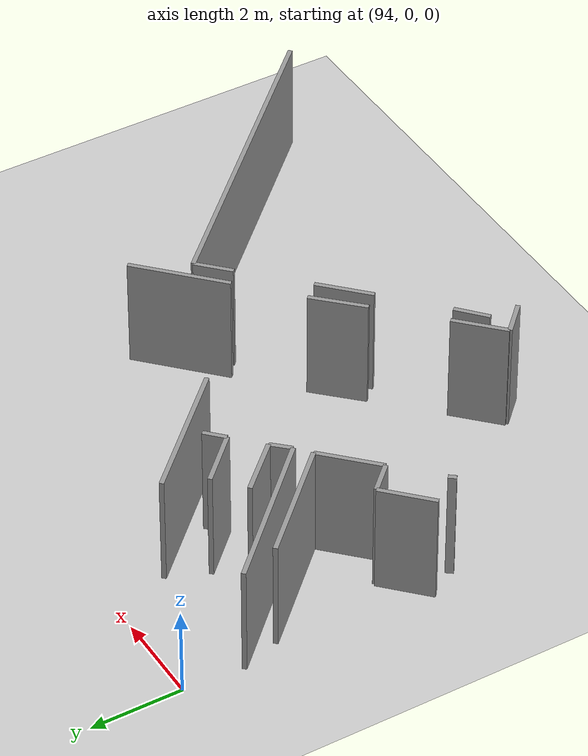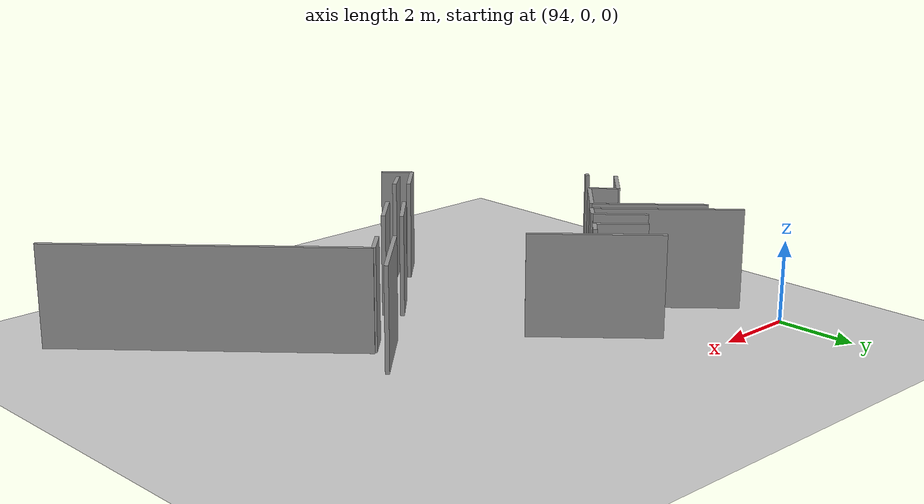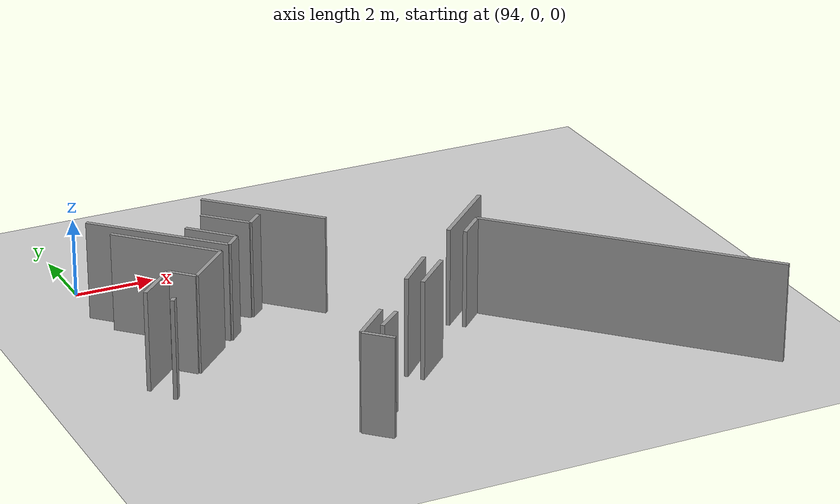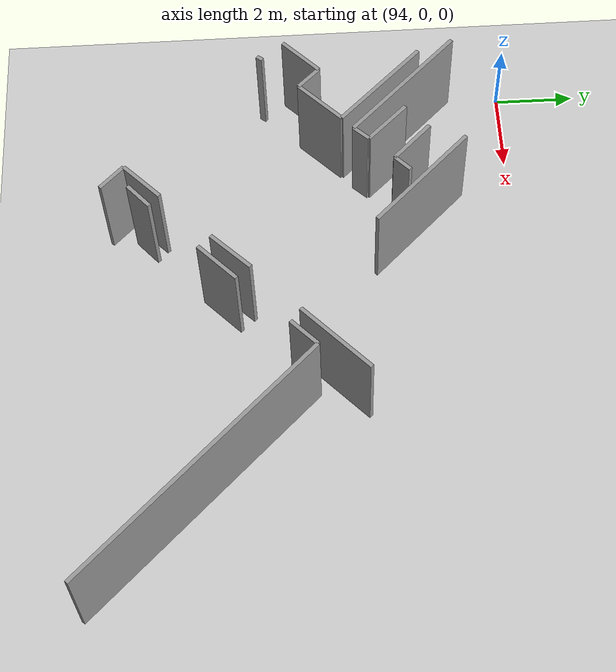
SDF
<sdf version="1.6">
 <world name="default">
  <model name="ground_plane">
   <static>1</static>
   <link name="link">
    <collision name="collision">
     <geometry><plane><normal>0 0 1</normal><size>100 100</size></plane></geometry>
     <surface><friction><ode><mu>100</mu><mu2>50</mu2></ode></friction></surface>
    </collision>
    <visual name="visual">
     <cast_shadows>0</cast_shadows>
     <geometry><plane><normal>0 0 1</normal><size>100 100</size></plane></geometry>
     <material>
      <script><uri>file://media/materials/scripts/gazebo.material</uri><name>Gazebo/Grey</name></script>
     </material>
    </visual>
   </link>
  </model>
  <model name="0510035341_A_40_1_103">
   <static>1</static>
   <link name="Wall_535">
    <collision name="Wall_535_Collision">
     <geometry><box><size>2.20255310303 0.1 2.5</size></box></geometry>
     <pose>1.10127655151 0 1.25 0 0 0</pose>
    </collision>
    <visual name="Wall_535_Visual">
     <pose>1.10127655151 0 1.25 0 0 0</pose>
     <geometry><box><size>2.20255310303 0.1 2.5</size></box></geometry>
     <material>
      <script><uri>file://media/materials/scripts/gazebo.material</uri><name>Gazebo/Grey</name></script>
      <ambient>1 1 1 1</ambient>
     </material>
    </visual>
    <pose>215.926353882 -27.986286585 0 0 0 -2.38049243117</pose>
   </link>
   <link name="Wall_536">
    <collision name="Wall_536_Collision">
     <geometry><box><size>1.27533748335 0.1 2.5</size></box></geometry>
     <pose>0.637668741676 0 1.25 0 0 0</pose>
    </collision>
    <visual name="Wall_536_Visual">
     <pose>0.637668741676 0 1.25 0 0 0</pose>
     <geometry><box><size>1.27533748335 0.1 2.5</size></box></geometry>
     <material>
      <script><uri>file://media/materials/scripts/gazebo.material</uri><name>Gazebo/Grey</name></script>
      <ambient>1 1 1 1</ambient>
     </material>
    </visual>
    <pose>213.150657101 -30.6017395721 0 0 0 -2.35028073204</pose>
   </link>
   <link name="Wall_537">
    <collision name="Wall_537_Collision">
     <geometry><box><size>1.22233351854 0.1 2.5</size></box></geometry>
     <pose>0.611166759272 0 1.25 0 0 0</pose>
    </collision>
    <visual name="Wall_537_Visual">
     <pose>0.611166759272 0 1.25 0 0 0</pose>
     <geometry><box><size>1.22233351854 0.1 2.5</size></box></geometry>
     <material>
      <script><uri>file://media/materials/scripts/gazebo.material</uri><name>Gazebo/Grey</name></script>
      <ambient>1 1 1 1</ambient>
     </material>
    </visual>
    <pose>211.050472986 -32.6925274586 0 0 0 -2.37294285054</pose>
   </link>
   <link name="Wall_538">
    <collision name="Wall_538_Collision">
     <geometry><box><size>0.796937391547 0.1 2.5</size></box></geometry>
     <pose>0.398468695774 0 1.25 0 0 0</pose>
    </collision>
    <visual name="Wall_538_Visual">
     <pose>0.398468695774 0 1.25 0 0 0</pose>
     <geometry><box><size>0.796937391547 0.1 2.5</size></box></geometry>
     <material>
      <script><uri>file://media/materials/scripts/gazebo.material</uri><name>Gazebo/Grey</name></script>
      <ambient>1 1 1 1</ambient>
     </material>
    </visual>
    <pose>210.171798616 -33.5422512856 0 0 0 -0.78494750998</pose>
   </link>
   <link name="Wall_636">
    <collision name="Wall_636_Collision">
     <geometry><box><size>3.67297040929 0.1 2.5</size></box></geometry>
     <pose>1.83648520464 0 1.25 0 0 0</pose>
    </collision>
    <visual name="Wall_636_Visual">
     <pose>1.83648520464 0 1.25 0 0 0</pose>
     <geometry><box><size>3.67297040929 0.1 2.5</size></box></geometry>
     <material>
      <script><uri>file://media/materials/scripts/gazebo.material</uri><name>Gazebo/Grey</name></script>
      <ambient>1 1 1 1</ambient>
     </material>
    </visual>
    <pose>209.354072757 -27.992127484 0 0 0 2.34578074647</pose>
   </link>
   <link name="Wall_644">
    <collision name="Wall_644_Collision">
     <geometry><box><size>0.505277251684 0.1 2.5</size></box></geometry>
     <pose>0.252638625842 0 1.25 0 0 0</pose>
    </collision>
    <visual name="Wall_644_Visual">
     <pose>0.252638625842 0 1.25 0 0 0</pose>
     <geometry><box><size>0.505277251684 0.1 2.5</size></box></geometry>
     <material>
      <script><uri>file://media/materials/scripts/gazebo.material</uri><name>Gazebo/Grey</name></script>
      <ambient>1 1 1 1</ambient>
     </material>
    </visual>
    <pose>210.654307663 -26.7078915624 0 0 0 -2.38000797568</pose>
   </link>
   <link name="Wall_645">
    <collision name="Wall_645_Collision">
     <geometry><box><size>1.26836235623 0.1 2.5</size></box></geometry>
     <pose>0.634181178116 0 1.25 0 0 0</pose>
    </collision>
    <visual name="Wall_645_Visual">
     <pose>0.634181178116 0 1.25 0 0 0</pose>
     <geometry><box><size>1.26836235623 0.1 2.5</size></box></geometry>
     <material>
      <script><uri>file://media/materials/scripts/gazebo.material</uri><name>Gazebo/Grey</name></script>
      <ambient>1 1 1 1</ambient>
     </material>
    </visual>
    <pose>210.288616596 -27.056567837 0 0 0 2.34727500424</pose>
   </link>
   <link name="Wall_647">
    <collision name="Wall_647_Collision">
     <geometry><box><size>1.31651539732 0.1 2.5</size></box></geometry>
     <pose>0.658257698662 0 1.25 0 0 0</pose>
    </collision>
    <visual name="Wall_647_Visual">
     <pose>0.658257698662 0 1.25 0 0 0</pose>
     <geometry><box><size>1.31651539732 0.1 2.5</size></box></geometry>
     <material>
      <script><uri>file://media/materials/scripts/gazebo.material</uri><name>Gazebo/Grey</name></script>
      <ambient>1 1 1 1</ambient>
     </material>
    </visual>
    <pose>208.785219986 -26.6830042537 0 0 0 -0.811180414796</pose>
   </link>
   <link name="Wall_648">
    <collision name="Wall_648_Collision">
     <geometry><box><size>0.489654742396 0.1 2.5</size></box></geometry>
     <pose>0.244827371198 0 1.25 0 0 0</pose>
    </collision>
    <visual name="Wall_648_Visual">
     <pose>0.244827371198 0 1.25 0 0 0</pose>
     <geometry><box><size>0.489654742396 0.1 2.5</size></box></geometry>
     <material>
      <script><uri>file://media/materials/scripts/gazebo.material</uri><name>Gazebo/Grey</name></script>
      <ambient>1 1 1 1</ambient>
     </material>
    </visual>
    <pose>209.69182909 -27.6376103105 0 0 0 -2.33198792071</pose>
   </link>
   <link name="Wall_652">
    <collision name="Wall_652_Collision">
     <geometry><box><size>2.81734256127 0.1 2.5</size></box></geometry>
     <pose>1.40867128063 0 1.25 0 0 0</pose>
    </collision>
    <visual name="Wall_652_Visual">
     <pose>1.40867128063 0 1.25 0 0 0</pose>
     <geometry><box><size>2.81734256127 0.1 2.5</size></box></geometry>
     <material>
      <script><uri>file://media/materials/scripts/gazebo.material</uri><name>Gazebo/Grey</name></script>
      <ambient>1 1 1 1</ambient>
     </material>
    </visual>
    <pose>207.076122151 -26.2345247921 0 0 0 -0.802416982899</pose>
   </link>
   <link name="Wall_653">
    <collision name="Wall_653_Collision">
     <geometry><box><size>1.43756926485 0.1 2.5</size></box></geometry>
     <pose>0.718784632424 0 1.25 0 0 0</pose>
    </collision>
    <visual name="Wall_653_Visual">
     <pose>0.718784632424 0 1.25 0 0 0</pose>
     <geometry><box><size>1.43756926485 0.1 2.5</size></box></geometry>
     <material>
      <script><uri>file://media/materials/scripts/gazebo.material</uri><name>Gazebo/Grey</name></script>
      <ambient>1 1 1 1</ambient>
     </material>
    </visual>
    <pose>209.034093073 -28.2603009333 0 0 0 -2.36806151586</pose>
   </link>
   <link name="Wall_654">
    <collision name="Wall_654_Collision">
     <geometry><box><size>0.721915871141 0.1 2.5</size></box></geometry>
     <pose>0.360957935571 0 1.25 0 0 0</pose>
    </collision>
    <visual name="Wall_654_Visual">
     <pose>0.360957935571 0 1.25 0 0 0</pose>
     <geometry><box><size>0.721915871141 0.1 2.5</size></box></geometry>
     <material>
      <script><uri>file://media/materials/scripts/gazebo.material</uri><name>Gazebo/Grey</name></script>
      <ambient>1 1 1 1</ambient>
     </material>
    </visual>
    <pose>208.005586947 -29.2646816075 0 0 0 2.3315664774</pose>
   </link>
   <link name="Wall_655">
    <collision name="Wall_655_Collision">
     <geometry><box><size>1.2333471943 0.1 2.5</size></box></geometry>
     <pose>0.616673597152 0 1.25 0 0 0</pose>
    </collision>
    <visual name="Wall_655_Visual">
     <pose>0.616673597152 0 1.25 0 0 0</pose>
     <geometry><box><size>1.2333471943 0.1 2.5</size></box></geometry>
     <material>
      <script><uri>file://media/materials/scripts/gazebo.material</uri><name>Gazebo/Grey</name></script>
      <ambient>1 1 1 1</ambient>
     </material>
    </visual>
    <pose>207.507840772 -28.7417941718 0 0 0 -2.37556006081</pose>
   </link>
   <link name="Wall_657">
    <collision name="Wall_657_Collision">
     <geometry><box><size>0.176096347302 0.1 2.5</size></box></geometry>
     <pose>0.0880481736508 0 1.25 0 0 0</pose>
    </collision>
    <visual name="Wall_657_Visual">
     <pose>0.0880481736508 0 1.25 0 0 0</pose>
     <geometry><box><size>0.176096347302 0.1 2.5</size></box></geometry>
     <material>
      <script><uri>file://media/materials/scripts/gazebo.material</uri><name>Gazebo/Grey</name></script>
      <ambient>1 1 1 1</ambient>
     </material>
    </visual>
    <pose>207.116754492 -30.1197384293 0 0 0 -2.2396814801</pose>
   </link>
   <link name="Wall_659">
    <collision name="Wall_659_Collision">
     <geometry><box><size>0.777375635695 0.1 2.5</size></box></geometry>
     <pose>0.388687817847 0 1.25 0 0 0</pose>
    </collision>
    <visual name="Wall_659_Visual">
     <pose>0.388687817847 0 1.25 0 0 0</pose>
     <geometry><box><size>0.777375635695 0.1 2.5</size></box></geometry>
     <material>
      <script><uri>file://media/materials/scripts/gazebo.material</uri><name>Gazebo/Grey</name></script>
      <ambient>1 1 1 1</ambient>
     </material>
    </visual>
    <pose>210.733032823 -33.4457494762 0 0 0 0.720673881982</pose>
   </link>
   <link name="Wall_660">
    <collision name="Wall_660_Collision">
     <geometry><box><size>1.26601647197 0.1 2.5</size></box></geometry>
     <pose>0.633008235987 0 1.25 0 0 0</pose>
    </collision>
    <visual name="Wall_660_Visual">
     <pose>0.633008235987 0 1.25 0 0 0</pose>
     <geometry><box><size>1.26601647197 0.1 2.5</size></box></geometry>
     <material>
      <script><uri>file://media/materials/scripts/gazebo.material</uri><name>Gazebo/Grey</name></script>
      <ambient>1 1 1 1</ambient>
     </material>
    </visual>
    <pose>212.525934861 -31.8128372802 0 0 0 0.766816106104</pose>
   </link>
   <link name="Wall_661">
    <collision name="Wall_661_Collision">
     <geometry><box><size>0.86283262432 0.1 2.5</size></box></geometry>
     <pose>0.43141631216 0 1.25 0 0 0</pose>
    </collision>
    <visual name="Wall_661_Visual">
     <pose>0.43141631216 0 1.25 0 0 0</pose>
     <geometry><box><size>0.86283262432 0.1 2.5</size></box></geometry>
     <material>
      <script><uri>file://media/materials/scripts/gazebo.material</uri><name>Gazebo/Grey</name></script>
      <ambient>1 1 1 1</ambient>
     </material>
    </visual>
    <pose>214.646435147 -29.7545552663 0 0 0 0.765417475561</pose>
   </link>
   <link name="Wall_662">
    <collision name="Wall_662_Collision">
     <geometry><box><size>7.61005068552 0.1 2.5</size></box></geometry>
     <pose>3.80502534276 0 1.25 0 0 0</pose>
    </collision>
    <visual name="Wall_662_Visual">
     <pose>3.80502534276 0 1.25 0 0 0</pose>
     <geometry><box><size>7.61005068552 0.1 2.5</size></box></geometry>
     <material>
      <script><uri>file://media/materials/scripts/gazebo.material</uri><name>Gazebo/Grey</name></script>
      <ambient>1 1 1 1</ambient>
     </material>
    </visual>
    <pose>215.268617866 -29.1567519523 0 0 0 -0.802223328446</pose>
   </link>
   <link name="Wall_764">
    <collision name="Wall_764_Collision">
     <geometry><box><size>3.22375081089 0.1 2.5</size></box></geometry>
     <pose>1.61187540544 0 1.25 0 0 0</pose>
    </collision>
    <visual name="Wall_764_Visual">
     <pose>1.61187540544 0 1.25 0 0 0</pose>
     <geometry><box><size>3.22375081089 0.1 2.5</size></box></geometry>
     <material>
      <script><uri>file://media/materials/scripts/gazebo.material</uri><name>Gazebo/Grey</name></script>
      <ambient>1 1 1 1</ambient>
     </material>
    </visual>
    <pose>212.018030601 -27.6007872516 0 0 0 2.34332683655</pose>
   </link>
   <pose>-112.9 24.0688781665 0 0 0 0</pose>
  </model>
 </world>
</sdf>
